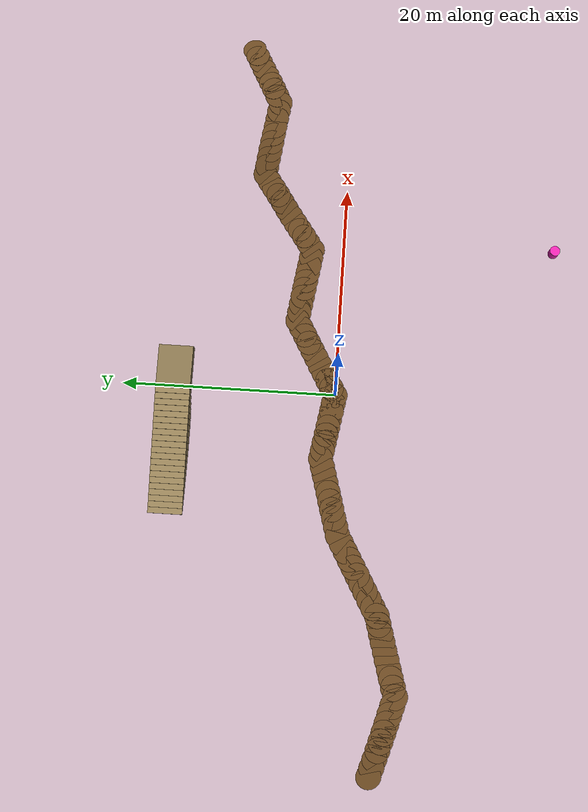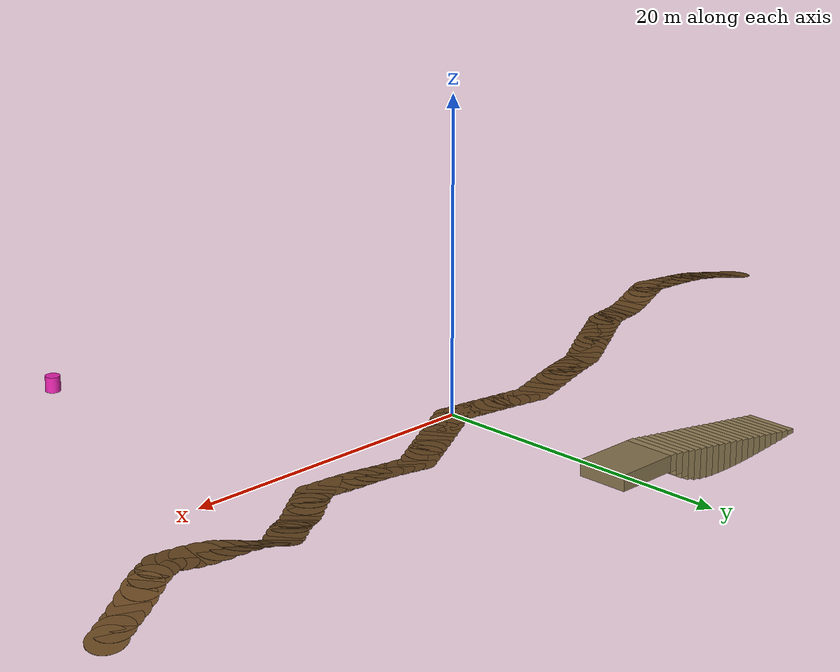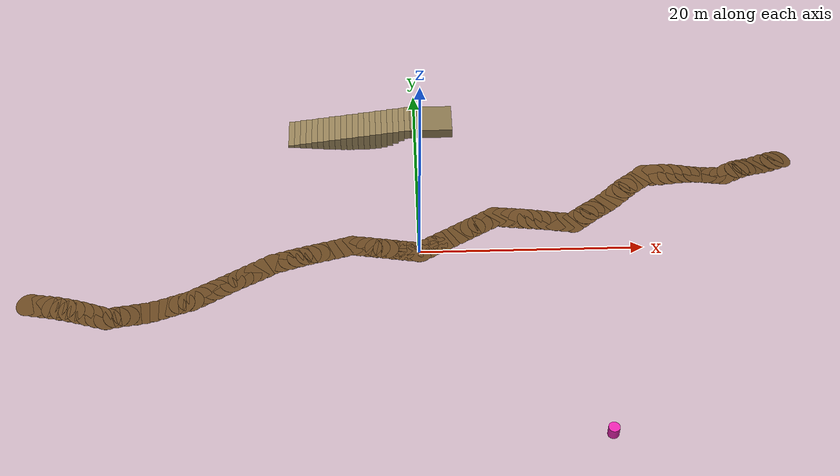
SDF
<sdf version="1.8">
 <world name="semantic_segmentation_world">
  <model name="winding_dirt_trail">
   <static>true</static>
   <link name="winding_dirt_trail_link">
    <visual name="trail_0_visual">
     <pose>-34.000000 -5.000000 0.050301 0.051949 -0.127891 0.000000</pose>
     <geometry><cylinder><radius>1.15</radius><length>0.02</length></cylinder></geometry>
     <material>
      <ambient>0.4 0.27 0.12 1.0</ambient>
      <diffuse>0.4 0.27 0.12 1.0</diffuse>
      <specular>0.04 0.04 0.04 1</specular>
     </material>
    </visual>
    <visual name="trail_1_visual">
     <pose>-33.222222 -5.222222 0.151182 0.059512 -0.159148 0.000000</pose>
     <geometry><cylinder><radius>1.15</radius><length>0.02</length></cylinder></geometry>
     <material>
      <ambient>0.4 0.27 0.12 1.0</ambient>
      <diffuse>0.4 0.27 0.12 1.0</diffuse>
      <specular>0.04 0.04 0.04 1</specular>
     </material>
    </visual>
    <visual name="trail_2_visual">
     <pose>-32.444444 -5.444444 0.267779 0.065935 -0.168386 0.000000</pose>
     <geometry><cylinder><radius>1.15</radius><length>0.02</length></cylinder></geometry>
     <material>
      <ambient>0.4 0.27 0.12 1.0</ambient>
      <diffuse>0.4 0.27 0.12 1.0</diffuse>
      <specular>0.04 0.04 0.04 1</specular>
     </material>
    </visual>
    <visual name="trail_3_visual">
     <pose>-31.666667 -5.666667 0.377255 0.072267 -0.143954 0.000000</pose>
     <geometry><cylinder><radius>1.15</radius><length>0.02</length></cylinder></geometry>
     <material>
      <ambient>0.4 0.27 0.12 1.0</ambient>
      <diffuse>0.4 0.27 0.12 1.0</diffuse>
      <specular>0.04 0.04 0.04 1</specular>
     </material>
    </visual>
    <visual name="trail_4_visual">
     <pose>-30.888889 -5.888889 0.453291 0.079092 -0.090111 0.000000</pose>
     <geometry><cylinder><radius>1.15</radius><length>0.02</length></cylinder></geometry>
     <material>
      <ambient>0.4 0.27 0.12 1.0</ambient>
      <diffuse>0.4 0.27 0.12 1.0</diffuse>
      <specular>0.04 0.04 0.04 1</specular>
     </material>
    </visual>
    <visual name="trail_5_visual">
     <pose>-30.111111 -6.111111 0.480769 0.084727 -0.028492 0.000000</pose>
     <geometry><cylinder><radius>1.15</radius><length>0.02</length></cylinder></geometry>
     <material>
      <ambient>0.4 0.27 0.12 1.0</ambient>
      <diffuse>0.4 0.27 0.12 1.0</diffuse>
      <specular>0.04 0.04 0.04 1</specular>
     </material>
    </visual>
    <visual name="trail_6_visual">
     <pose>-29.333333 -6.333333 0.465073 0.084875 0.015345 0.000000</pose>
     <geometry><cylinder><radius>1.15</radius><length>0.02</length></cylinder></geometry>
     <material>
      <ambient>0.4 0.27 0.12 1.0</ambient>
      <diffuse>0.4 0.27 0.12 1.0</diffuse>
      <specular>0.04 0.04 0.04 1</specular>
     </material>
    </visual>
    <visual name="trail_7_visual">
     <pose>-28.555556 -6.555556 0.426920 0.074791 0.032641 0.000000</pose>
     <geometry><cylinder><radius>1.15</radius><length>0.02</length></cylinder></geometry>
     <material>
      <ambient>0.4 0.27 0.12 1.0</ambient>
      <diffuse>0.4 0.27 0.12 1.0</diffuse>
      <specular>0.04 0.04 0.04 1</specular>
     </material>
    </visual>
    <visual name="trail_8_visual">
     <pose>-27.777778 -6.777778 0.384693 0.052904 0.039408 0.000000</pose>
     <geometry><cylinder><radius>1.15</radius><length>0.02</length></cylinder></geometry>
     <material>
      <ambient>0.4 0.27 0.12 1.0</ambient>
      <diffuse>0.4 0.27 0.12 1.0</diffuse>
      <specular>0.04 0.04 0.04 1</specular>
     </material>
    </visual>
    <visual name="trail_9_visual">
     <pose>-27.000000 -7.000000 0.338432 0.023169 0.061938 0.000000</pose>
     <geometry><cylinder><radius>1.15</radius><length>0.02</length></cylinder></geometry>
     <material>
      <ambient>0.4 0.27 0.12 1.0</ambient>
      <diffuse>0.4 0.27 0.12 1.0</diffuse>
      <specular>0.04 0.04 0.04 1</specular>
     </material>
    </visual>
    <visual name="trail_10_visual">
     <pose>-26.222222 -6.777778 0.269405 -0.001043 0.122309 0.000000</pose>
     <geometry><cylinder><radius>1.15</radius><length>0.02</length></cylinder></geometry>
     <material>
      <ambient>0.4 0.27 0.12 1.0</ambient>
      <diffuse>0.4 0.27 0.12 1.0</diffuse>
      <specular>0.04 0.04 0.04 1</specular>
     </material>
    </visual>
    <visual name="trail_11_visual">
     <pose>-25.444444 -6.555556 0.150694 -0.012274 0.170468 0.000000</pose>
     <geometry><cylinder><radius>1.15</radius><length>0.02</length></cylinder></geometry>
     <material>
      <ambient>0.4 0.27 0.12 1.0</ambient>
      <diffuse>0.4 0.27 0.12 1.0</diffuse>
      <specular>0.04 0.04 0.04 1</specular>
     </material>
    </visual>
    <visual name="trail_12_visual">
     <pose>-24.666667 -6.333333 0.010501 -0.010062 0.168952 0.000000</pose>
     <geometry><cylinder><radius>1.15</radius><length>0.02</length></cylinder></geometry>
     <material>
      <ambient>0.4 0.27 0.12 1.0</ambient>
      <diffuse>0.4 0.27 0.12 1.0</diffuse>
      <specular>0.04 0.04 0.04 1</specular>
     </material>
    </visual>
    <visual name="trail_13_visual">
     <pose>-23.888889 -6.111111 -0.102235 -0.000740 0.106440 0.000000</pose>
     <geometry><cylinder><radius>1.15</radius><length>0.02</length></cylinder></geometry>
     <material>
      <ambient>0.4 0.27 0.12 1.0</ambient>
      <diffuse>0.4 0.27 0.12 1.0</diffuse>
      <specular>0.04 0.04 0.04 1</specular>
     </material>
    </visual>
    <visual name="trail_14_visual">
     <pose>-23.111111 -5.888889 -0.147466 0.007459 0.010183 0.000000</pose>
     <geometry><cylinder><radius>1.15</radius><length>0.02</length></cylinder></geometry>
     <material>
      <ambient>0.4 0.27 0.12 1.0</ambient>
      <diffuse>0.4 0.27 0.12 1.0</diffuse>
      <specular>0.04 0.04 0.04 1</specular>
     </material>
    </visual>
    <visual name="trail_15_visual">
     <pose>-22.333333 -5.666667 -0.119939 0.009988 -0.068469 0.000000</pose>
     <geometry><cylinder><radius>1.15</radius><length>0.02</length></cylinder></geometry>
     <material>
      <ambient>0.4 0.27 0.12 1.0</ambient>
      <diffuse>0.4 0.27 0.12 1.0</diffuse>
      <specular>0.04 0.04 0.04 1</specular>
     </material>
    </visual>
    <visual name="trail_16_visual">
     <pose>-21.555556 -5.444444 -0.050955 0.007957 -0.092983 0.000000</pose>
     <geometry><cylinder><radius>1.15</radius><length>0.02</length></cylinder></geometry>
     <material>
      <ambient>0.4 0.27 0.12 1.0</ambient>
      <diffuse>0.4 0.27 0.12 1.0</diffuse>
      <specular>0.04 0.04 0.04 1</specular>
     </material>
    </visual>
    <visual name="trail_17_visual">
     <pose>-20.777778 -5.222222 0.015080 0.005329 -0.066254 0.000000</pose>
     <geometry><cylinder><radius>1.15</radius><length>0.02</length></cylinder></geometry>
     <material>
      <ambient>0.4 0.27 0.12 1.0</ambient>
      <diffuse>0.4 0.27 0.12 1.0</diffuse>
      <specular>0.04 0.04 0.04 1</specular>
     </material>
    </visual>
    <visual name="trail_18_visual">
     <pose>-20.000000 -5.000000 0.050368 0.004247 -0.022375 0.000000</pose>
     <geometry><cylinder><radius>1.15</radius><length>0.02</length></cylinder></geometry>
     <material>
      <ambient>0.4 0.27 0.12 1.0</ambient>
      <diffuse>0.4 0.27 0.12 1.0</diffuse>
      <specular>0.04 0.04 0.04 1</specular>
     </material>
    </visual>
    <visual name="trail_19_visual">
     <pose>-19.300000 -4.600000 0.057784 0.003837 0.002125 0.000000</pose>
     <geometry><cylinder><radius>1.15</radius><length>0.02</length></cylinder></geometry>
     <material>
      <ambient>0.4 0.27 0.12 1.0</ambient>
      <diffuse>0.4 0.27 0.12 1.0</diffuse>
      <specular>0.04 0.04 0.04 1</specular>
     </material>
    </visual>
    <visual name="trail_20_visual">
     <pose>-18.600000 -4.200000 0.055387 -0.001527 0.003000 0.000000</pose>
     <geometry><cylinder><radius>1.15</radius><length>0.02</length></cylinder></geometry>
     <material>
      <ambient>0.4 0.27 0.12 1.0</ambient>
      <diffuse>0.4 0.27 0.12 1.0</diffuse>
      <specular>0.04 0.04 0.04 1</specular>
     </material>
    </visual>
    <visual name="trail_21_visual">
     <pose>-17.900000 -3.800000 0.054753 -0.011427 -0.009036 0.000000</pose>
     <geometry><cylinder><radius>1.15</radius><length>0.02</length></cylinder></geometry>
     <material>
      <ambient>0.4 0.27 0.12 1.0</ambient>
      <diffuse>0.4 0.27 0.12 1.0</diffuse>
      <specular>0.04 0.04 0.04 1</specular>
     </material>
    </visual>
    <visual name="trail_22_visual">
     <pose>-17.200000 -3.400000 0.057856 -0.022386 -0.017548 0.000000</pose>
     <geometry><cylinder><radius>1.15</radius><length>0.02</length></cylinder></geometry>
     <material>
      <ambient>0.4 0.27 0.12 1.0</ambient>
      <diffuse>0.4 0.27 0.12 1.0</diffuse>
      <specular>0.04 0.04 0.04 1</specular>
     </material>
    </visual>
    <visual name="trail_23_visual">
     <pose>-16.500000 -3.000000 0.058981 -0.029237 -0.013594 0.000000</pose>
     <geometry><cylinder><radius>1.15</radius><length>0.02</length></cylinder></geometry>
     <material>
      <ambient>0.4 0.27 0.12 1.0</ambient>
      <diffuse>0.4 0.27 0.12 1.0</diffuse>
      <specular>0.04 0.04 0.04 1</specular>
     </material>
    </visual>
    <visual name="trail_24_visual">
     <pose>-15.800000 -2.600000 0.052485 -0.027911 -0.000686 0.000000</pose>
     <geometry><cylinder><radius>1.15</radius><length>0.02</length></cylinder></geometry>
     <material>
      <ambient>0.4 0.27 0.12 1.0</ambient>
      <diffuse>0.4 0.27 0.12 1.0</diffuse>
      <specular>0.04 0.04 0.04 1</specular>
     </material>
    </visual>
    <visual name="trail_25_visual">
     <pose>-15.100000 -2.200000 0.039299 -0.017826 0.010184 0.000000</pose>
     <geometry><cylinder><radius>1.15</radius><length>0.02</length></cylinder></geometry>
     <material>
      <ambient>0.4 0.27 0.12 1.0</ambient>
      <diffuse>0.4 0.27 0.12 1.0</diffuse>
      <specular>0.04 0.04 0.04 1</specular>
     </material>
    </visual>
    <visual name="trail_26_visual">
     <pose>-14.400000 -1.800000 0.027321 -0.002390 0.010003 0.000000</pose>
     <geometry><cylinder><radius>1.15</radius><length>0.02</length></cylinder></geometry>
     <material>
      <ambient>0.4 0.27 0.12 1.0</ambient>
      <diffuse>0.4 0.27 0.12 1.0</diffuse>
      <specular>0.04 0.04 0.04 1</specular>
     </material>
    </visual>
    <visual name="trail_27_visual">
     <pose>-13.700000 -1.400000 0.026060 0.012605 -0.001747 0.000000</pose>
     <geometry><cylinder><radius>1.15</radius><length>0.02</length></cylinder></geometry>
     <material>
      <ambient>0.4 0.27 0.12 1.0</ambient>
      <diffuse>0.4 0.27 0.12 1.0</diffuse>
      <specular>0.04 0.04 0.04 1</specular>
     </material>
    </visual>
    <visual name="trail_28_visual">
     <pose>-13.000000 -1.000000 0.039954 0.021659 -0.017383 0.000000</pose>
     <geometry><cylinder><radius>1.15</radius><length>0.02</length></cylinder></geometry>
     <material>
      <ambient>0.4 0.27 0.12 1.0</ambient>
      <diffuse>0.4 0.27 0.12 1.0</diffuse>
      <specular>0.04 0.04 0.04 1</specular>
     </material>
    </visual>
    <visual name="trail_29_visual">
     <pose>-12.222222 -0.777778 0.063559 0.019212 -0.029665 0.000000</pose>
     <geometry><cylinder><radius>1.15</radius><length>0.02</length></cylinder></geometry>
     <material>
      <ambient>0.4 0.27 0.12 1.0</ambient>
      <diffuse>0.4 0.27 0.12 1.0</diffuse>
      <specular>0.04 0.04 0.04 1</specular>
     </material>
    </visual>
    <visual name="trail_30_visual">
     <pose>-11.444444 -0.555556 0.090531 0.008651 -0.028011 0.000000</pose>
     <geometry><cylinder><radius>1.15</radius><length>0.02</length></cylinder></geometry>
     <material>
      <ambient>0.4 0.27 0.12 1.0</ambient>
      <diffuse>0.4 0.27 0.12 1.0</diffuse>
      <specular>0.04 0.04 0.04 1</specular>
     </material>
    </visual>
    <visual name="trail_31_visual">
     <pose>-10.666667 -0.333333 0.106190 -0.006401 -0.009564 0.000000</pose>
     <geometry><cylinder><radius>1.15</radius><length>0.02</length></cylinder></geometry>
     <material>
      <ambient>0.4 0.27 0.12 1.0</ambient>
      <diffuse>0.4 0.27 0.12 1.0</diffuse>
      <specular>0.04 0.04 0.04 1</specular>
     </material>
    </visual>
    <visual name="trail_32_visual">
     <pose>-9.888889 -0.111111 0.101560 -0.019864 0.013274 0.000000</pose>
     <geometry><cylinder><radius>1.15</radius><length>0.02</length></cylinder></geometry>
     <material>
      <ambient>0.4 0.27 0.12 1.0</ambient>
      <diffuse>0.4 0.27 0.12 1.0</diffuse>
      <specular>0.04 0.04 0.04 1</specular>
     </material>
    </visual>
    <visual name="trail_33_visual">
     <pose>-9.111111 0.111111 0.079439 -0.027470 0.027534 0.000000</pose>
     <geometry><cylinder><radius>1.15</radius><length>0.02</length></cylinder></geometry>
     <material>
      <ambient>0.4 0.27 0.12 1.0</ambient>
      <diffuse>0.4 0.27 0.12 1.0</diffuse>
      <specular>0.04 0.04 0.04 1</specular>
     </material>
    </visual>
    <visual name="trail_34_visual">
     <pose>-8.333333 0.333333 0.050708 -0.028105 0.027828 0.000000</pose>
     <geometry><cylinder><radius>1.15</radius><length>0.02</length></cylinder></geometry>
     <material>
      <ambient>0.4 0.27 0.12 1.0</ambient>
      <diffuse>0.4 0.27 0.12 1.0</diffuse>
      <specular>0.04 0.04 0.04 1</specular>
     </material>
    </visual>
    <visual name="trail_35_visual">
     <pose>-7.555556 0.555556 0.026869 -0.023271 0.017339 0.000000</pose>
     <geometry><cylinder><radius>1.15</radius><length>0.02</length></cylinder></geometry>
     <material>
      <ambient>0.4 0.27 0.12 1.0</ambient>
      <diffuse>0.4 0.27 0.12 1.0</diffuse>
      <specular>0.04 0.04 0.04 1</specular>
     </material>
    </visual>
    <visual name="trail_36_visual">
     <pose>-6.777778 0.777778 0.014475 -0.015841 0.003347 0.000000</pose>
     <geometry><cylinder><radius>1.15</radius><length>0.02</length></cylinder></geometry>
     <material>
      <ambient>0.4 0.27 0.12 1.0</ambient>
      <diffuse>0.4 0.27 0.12 1.0</diffuse>
      <specular>0.04 0.04 0.04 1</specular>
     </material>
    </visual>
    <visual name="trail_37_visual">
     <pose>-6.000000 1.000000 0.013785 -0.008731 -0.007606 0.000000</pose>
     <geometry><cylinder><radius>1.15</radius><length>0.02</length></cylinder></geometry>
     <material>
      <ambient>0.4 0.27 0.12 1.0</ambient>
      <diffuse>0.4 0.27 0.12 1.0</diffuse>
      <specular>0.04 0.04 0.04 1</specular>
     </material>
    </visual>
    <visual name="trail_38_visual">
     <pose>-5.250000 0.875000 0.021679 -0.004285 -0.010530 0.000000</pose>
     <geometry><cylinder><radius>1.15</radius><length>0.02</length></cylinder></geometry>
     <material>
      <ambient>0.4 0.27 0.12 1.0</ambient>
      <diffuse>0.4 0.27 0.12 1.0</diffuse>
      <specular>0.04 0.04 0.04 1</specular>
     </material>
    </visual>
    <visual name="trail_39_visual">
     <pose>-4.500000 0.750000 0.029700 -0.001527 -0.009337 0.000000</pose>
     <geometry><cylinder><radius>1.15</radius><length>0.02</length></cylinder></geometry>
     <material>
      <ambient>0.4 0.27 0.12 1.0</ambient>
      <diffuse>0.4 0.27 0.12 1.0</diffuse>
      <specular>0.04 0.04 0.04 1</specular>
     </material>
    </visual>
    <visual name="trail_40_visual">
     <pose>-3.750000 0.625000 0.035466 -0.000394 -0.005452 0.000000</pose>
     <geometry><cylinder><radius>1.15</radius><length>0.02</length></cylinder></geometry>
     <material>
      <ambient>0.4 0.27 0.12 1.0</ambient>
      <diffuse>0.4 0.27 0.12 1.0</diffuse>
      <specular>0.04 0.04 0.04 1</specular>
     </material>
    </visual>
    <visual name="trail_41_visual">
     <pose>-3.000000 0.500000 0.037879 -0.000111 -0.001050 0.000000</pose>
     <geometry><cylinder><radius>1.15</radius><length>0.02</length></cylinder></geometry>
     <material>
      <ambient>0.4 0.27 0.12 1.0</ambient>
      <diffuse>0.4 0.27 0.12 1.0</diffuse>
      <specular>0.04 0.04 0.04 1</specular>
     </material>
    </visual>
    <visual name="trail_42_visual">
     <pose>-2.250000 0.375000 0.038000 0.000000 -0.000000 0.000000</pose>
     <geometry><cylinder><radius>1.15</radius><length>0.02</length></cylinder></geometry>
     <material>
      <ambient>0.4 0.27 0.12 1.0</ambient>
      <diffuse>0.4 0.27 0.12 1.0</diffuse>
      <specular>0.04 0.04 0.04 1</specular>
     </material>
    </visual>
    <visual name="trail_43_visual">
     <pose>-1.500000 0.250000 0.038000 0.000000 -0.000000 0.000000</pose>
     <geometry><cylinder><radius>1.15</radius><length>0.02</length></cylinder></geometry>
     <material>
      <ambient>0.4 0.27 0.12 1.0</ambient>
      <diffuse>0.4 0.27 0.12 1.0</diffuse>
      <specular>0.04 0.04 0.04 1</specular>
     </material>
    </visual>
    <visual name="trail_44_visual">
     <pose>-0.750000 0.125000 0.038000 0.000000 -0.000000 0.000000</pose>
     <geometry><cylinder><radius>1.15</radius><length>0.02</length></cylinder></geometry>
     <material>
      <ambient>0.4 0.27 0.12 1.0</ambient>
      <diffuse>0.4 0.27 0.12 1.0</diffuse>
      <specular>0.04 0.04 0.04 1</specular>
     </material>
    </visual>
    <visual name="trail_45_visual">
     <pose>0.000000 0.000000 0.038000 0.000000 -0.000000 0.000000</pose>
     <geometry><cylinder><radius>1.15</radius><length>0.02</length></cylinder></geometry>
     <material>
      <ambient>0.4 0.27 0.12 1.0</ambient>
      <diffuse>0.4 0.27 0.12 1.0</diffuse>
      <specular>0.04 0.04 0.04 1</specular>
     </material>
    </visual>
    <visual name="trail_46_visual">
     <pose>0.700000 0.400000 0.038000 0.000000 -0.000000 0.000000</pose>
     <geometry><cylinder><radius>1.15</radius><length>0.02</length></cylinder></geometry>
     <material>
      <ambient>0.4 0.27 0.12 1.0</ambient>
      <diffuse>0.4 0.27 0.12 1.0</diffuse>
      <specular>0.04 0.04 0.04 1</specular>
     </material>
    </visual>
    <visual name="trail_47_visual">
     <pose>1.400000 0.800000 0.038000 0.000000 -0.000000 0.000000</pose>
     <geometry><cylinder><radius>1.15</radius><length>0.02</length></cylinder></geometry>
     <material>
      <ambient>0.4 0.27 0.12 1.0</ambient>
      <diffuse>0.4 0.27 0.12 1.0</diffuse>
      <specular>0.04 0.04 0.04 1</specular>
     </material>
    </visual>
    <visual name="trail_48_visual">
     <pose>2.100000 1.200000 0.038000 0.000000 -0.000000 0.000000</pose>
     <geometry><cylinder><radius>1.15</radius><length>0.02</length></cylinder></geometry>
     <material>
      <ambient>0.4 0.27 0.12 1.0</ambient>
      <diffuse>0.4 0.27 0.12 1.0</diffuse>
      <specular>0.04 0.04 0.04 1</specular>
     </material>
    </visual>
    <visual name="trail_49_visual">
     <pose>2.800000 1.600000 0.039315 0.003081 -0.005220 0.000000</pose>
     <geometry><cylinder><radius>1.15</radius><length>0.02</length></cylinder></geometry>
     <material>
      <ambient>0.4 0.27 0.12 1.0</ambient>
      <diffuse>0.4 0.27 0.12 1.0</diffuse>
      <specular>0.04 0.04 0.04 1</specular>
     </material>
    </visual>
    <visual name="trail_50_visual">
     <pose>3.500000 2.000000 0.047896 0.007661 -0.012226 0.000000</pose>
     <geometry><cylinder><radius>1.15</radius><length>0.02</length></cylinder></geometry>
     <material>
      <ambient>0.4 0.27 0.12 1.0</ambient>
      <diffuse>0.4 0.27 0.12 1.0</diffuse>
      <specular>0.04 0.04 0.04 1</specular>
     </material>
    </visual>
    <visual name="trail_51_visual">
     <pose>4.200000 2.400000 0.061177 0.009997 -0.014523 0.000000</pose>
     <geometry><cylinder><radius>1.15</radius><length>0.02</length></cylinder></geometry>
     <material>
      <ambient>0.4 0.27 0.12 1.0</ambient>
      <diffuse>0.4 0.27 0.12 1.0</diffuse>
      <specular>0.04 0.04 0.04 1</specular>
     </material>
    </visual>
    <visual name="trail_52_visual">
     <pose>4.900000 2.800000 0.074481 0.009116 -0.011171 0.000000</pose>
     <geometry><cylinder><radius>1.15</radius><length>0.02</length></cylinder></geometry>
     <material>
      <ambient>0.4 0.27 0.12 1.0</ambient>
      <diffuse>0.4 0.27 0.12 1.0</diffuse>
      <specular>0.04 0.04 0.04 1</specular>
     </material>
    </visual>
    <visual name="trail_53_visual">
     <pose>5.600000 3.200000 0.082644 0.005771 -0.003417 0.000000</pose>
     <geometry><cylinder><radius>1.15</radius><length>0.02</length></cylinder></geometry>
     <material>
      <ambient>0.4 0.27 0.12 1.0</ambient>
      <diffuse>0.4 0.27 0.12 1.0</diffuse>
      <specular>0.04 0.04 0.04 1</specular>
     </material>
    </visual>
    <visual name="trail_54_visual">
     <pose>6.300000 3.600000 0.085821 0.008185 -0.000936 0.000000</pose>
     <geometry><cylinder><radius>1.15</radius><length>0.02</length></cylinder></geometry>
     <material>
      <ambient>0.4 0.27 0.12 1.0</ambient>
      <diffuse>0.4 0.27 0.12 1.0</diffuse>
      <specular>0.04 0.04 0.04 1</specular>
     </material>
    </visual>
    <visual name="trail_55_visual">
     <pose>7.000000 4.000000 0.096664 0.025869 -0.015082 0.000000</pose>
     <geometry><cylinder><radius>1.15</radius><length>0.02</length></cylinder></geometry>
     <material>
      <ambient>0.4 0.27 0.12 1.0</ambient>
      <diffuse>0.4 0.27 0.12 1.0</diffuse>
      <specular>0.04 0.04 0.04 1</specular>
     </material>
    </visual>
    <visual name="trail_56_visual">
     <pose>7.777778 3.888889 0.109439 0.042663 -0.027699 0.000000</pose>
     <geometry><cylinder><radius>1.15</radius><length>0.02</length></cylinder></geometry>
     <material>
      <ambient>0.4 0.27 0.12 1.0</ambient>
      <diffuse>0.4 0.27 0.12 1.0</diffuse>
      <specular>0.04 0.04 0.04 1</specular>
     </material>
    </visual>
    <visual name="trail_57_visual">
     <pose>8.555556 3.777778 0.129585 0.055896 -0.037061 0.000000</pose>
     <geometry><cylinder><radius>1.15</radius><length>0.02</length></cylinder></geometry>
     <material>
      <ambient>0.4 0.27 0.12 1.0</ambient>
      <diffuse>0.4 0.27 0.12 1.0</diffuse>
      <specular>0.04 0.04 0.04 1</specular>
     </material>
    </visual>
    <visual name="trail_58_visual">
     <pose>9.333333 3.666667 0.152200 0.057690 -0.035253 0.000000</pose>
     <geometry><cylinder><radius>1.15</radius><length>0.02</length></cylinder></geometry>
     <material>
      <ambient>0.4 0.27 0.12 1.0</ambient>
      <diffuse>0.4 0.27 0.12 1.0</diffuse>
      <specular>0.04 0.04 0.04 1</specular>
     </material>
    </visual>
    <visual name="trail_59_visual">
     <pose>10.111111 3.555556 0.168534 0.045211 -0.019666 0.000000</pose>
     <geometry><cylinder><radius>1.15</radius><length>0.02</length></cylinder></geometry>
     <material>
      <ambient>0.4 0.27 0.12 1.0</ambient>
      <diffuse>0.4 0.27 0.12 1.0</diffuse>
      <specular>0.04 0.04 0.04 1</specular>
     </material>
    </visual>
    <visual name="trail_60_visual">
     <pose>10.888889 3.444444 0.171141 0.023995 0.003237 0.000000</pose>
     <geometry><cylinder><radius>1.15</radius><length>0.02</length></cylinder></geometry>
     <material>
      <ambient>0.4 0.27 0.12 1.0</ambient>
      <diffuse>0.4 0.27 0.12 1.0</diffuse>
      <specular>0.04 0.04 0.04 1</specular>
     </material>
    </visual>
    <visual name="trail_61_visual">
     <pose>11.666667 3.333333 0.159964 0.006564 0.017878 0.000000</pose>
     <geometry><cylinder><radius>1.15</radius><length>0.02</length></cylinder></geometry>
     <material>
      <ambient>0.4 0.27 0.12 1.0</ambient>
      <diffuse>0.4 0.27 0.12 1.0</diffuse>
      <specular>0.04 0.04 0.04 1</specular>
     </material>
    </visual>
    <visual name="trail_62_visual">
     <pose>12.444444 3.222222 0.145769 0.002724 0.014941 0.000000</pose>
     <geometry><cylinder><radius>1.15</radius><length>0.02</length></cylinder></geometry>
     <material>
      <ambient>0.4 0.27 0.12 1.0</ambient>
      <diffuse>0.4 0.27 0.12 1.0</diffuse>
      <specular>0.04 0.04 0.04 1</specular>
     </material>
    </visual>
    <visual name="trail_63_visual">
     <pose>13.222222 3.111111 0.139380 0.013500 -0.002595 0.000000</pose>
     <geometry><cylinder><radius>1.15</radius><length>0.02</length></cylinder></geometry>
     <material>
      <ambient>0.4 0.27 0.12 1.0</ambient>
      <diffuse>0.4 0.27 0.12 1.0</diffuse>
      <specular>0.04 0.04 0.04 1</specular>
     </material>
    </visual>
    <visual name="trail_64_visual">
     <pose>14.000000 3.000000 0.148345 0.033001 -0.027257 0.000000</pose>
     <geometry><cylinder><radius>1.15</radius><length>0.02</length></cylinder></geometry>
     <material>
      <ambient>0.4 0.27 0.12 1.0</ambient>
      <diffuse>0.4 0.27 0.12 1.0</diffuse>
      <specular>0.04 0.04 0.04 1</specular>
     </material>
    </visual>
    <visual name="trail_65_visual">
     <pose>14.636364 3.454545 0.196060 0.054283 -0.051983 0.000000</pose>
     <geometry><cylinder><radius>1.15</radius><length>0.02</length></cylinder></geometry>
     <material>
      <ambient>0.4 0.27 0.12 1.0</ambient>
      <diffuse>0.4 0.27 0.12 1.0</diffuse>
      <specular>0.04 0.04 0.04 1</specular>
     </material>
    </visual>
    <visual name="trail_66_visual">
     <pose>15.272727 3.909091 0.247538 0.033523 -0.032747 0.000000</pose>
     <geometry><cylinder><radius>1.15</radius><length>0.02</length></cylinder></geometry>
     <material>
      <ambient>0.4 0.27 0.12 1.0</ambient>
      <diffuse>0.4 0.27 0.12 1.0</diffuse>
      <specular>0.04 0.04 0.04 1</specular>
     </material>
    </visual>
    <visual name="trail_67_visual">
     <pose>15.909091 4.363636 0.257259 -0.018283 0.012572 0.000000</pose>
     <geometry><cylinder><radius>1.15</radius><length>0.02</length></cylinder></geometry>
     <material>
      <ambient>0.4 0.27 0.12 1.0</ambient>
      <diffuse>0.4 0.27 0.12 1.0</diffuse>
      <specular>0.04 0.04 0.04 1</specular>
     </material>
    </visual>
    <visual name="trail_68_visual">
     <pose>16.545455 4.818182 0.229940 -0.032651 0.015077 0.000000</pose>
     <geometry><cylinder><radius>1.15</radius><length>0.02</length></cylinder></geometry>
     <material>
      <ambient>0.4 0.27 0.12 1.0</ambient>
      <diffuse>0.4 0.27 0.12 1.0</diffuse>
      <specular>0.04 0.04 0.04 1</specular>
     </material>
    </visual>
    <visual name="trail_69_visual">
     <pose>17.181818 5.272727 0.239385 0.037044 -0.062756 0.000000</pose>
     <geometry><cylinder><radius>1.15</radius><length>0.02</length></cylinder></geometry>
     <material>
      <ambient>0.4 0.27 0.12 1.0</ambient>
      <diffuse>0.4 0.27 0.12 1.0</diffuse>
      <specular>0.04 0.04 0.04 1</specular>
     </material>
    </visual>
    <visual name="trail_70_visual">
     <pose>17.818182 5.727273 0.354542 0.141368 -0.162178 0.000000</pose>
     <geometry><cylinder><radius>1.15</radius><length>0.02</length></cylinder></geometry>
     <material>
      <ambient>0.4 0.27 0.12 1.0</ambient>
      <diffuse>0.4 0.27 0.12 1.0</diffuse>
      <specular>0.04 0.04 0.04 1</specular>
     </material>
    </visual>
    <visual name="trail_71_visual">
     <pose>18.454545 6.181818 0.548709 0.175844 -0.183147 0.000000</pose>
     <geometry><cylinder><radius>1.15</radius><length>0.02</length></cylinder></geometry>
     <material>
      <ambient>0.4 0.27 0.12 1.0</ambient>
      <diffuse>0.4 0.27 0.12 1.0</diffuse>
      <specular>0.04 0.04 0.04 1</specular>
     </material>
    </visual>
    <visual name="trail_72_visual">
     <pose>19.090909 6.636364 0.712521 0.106114 -0.105050 0.000000</pose>
     <geometry><cylinder><radius>1.15</radius><length>0.02</length></cylinder></geometry>
     <material>
      <ambient>0.4 0.27 0.12 1.0</ambient>
      <diffuse>0.4 0.27 0.12 1.0</diffuse>
      <specular>0.04 0.04 0.04 1</specular>
     </material>
    </visual>
    <visual name="trail_73_visual">
     <pose>19.727273 7.090909 0.777160 0.020920 -0.025201 0.000000</pose>
     <geometry><cylinder><radius>1.15</radius><length>0.02</length></cylinder></geometry>
     <material>
      <ambient>0.4 0.27 0.12 1.0</ambient>
      <diffuse>0.4 0.27 0.12 1.0</diffuse>
      <specular>0.04 0.04 0.04 1</specular>
     </material>
    </visual>
    <visual name="trail_74_visual">
     <pose>20.363636 7.545455 0.804548 0.040464 -0.054853 0.000000</pose>
     <geometry><cylinder><radius>1.15</radius><length>0.02</length></cylinder></geometry>
     <material>
      <ambient>0.4 0.27 0.12 1.0</ambient>
      <diffuse>0.4 0.27 0.12 1.0</diffuse>
      <specular>0.04 0.04 0.04 1</specular>
     </material>
    </visual>
    <visual name="trail_75_visual">
     <pose>21.000000 8.000000 0.918118 0.155977 -0.167173 0.000000</pose>
     <geometry><cylinder><radius>1.15</radius><length>0.02</length></cylinder></geometry>
     <material>
      <ambient>0.4 0.27 0.12 1.0</ambient>
      <diffuse>0.4 0.27 0.12 1.0</diffuse>
      <specular>0.04 0.04 0.04 1</specular>
     </material>
    </visual>
    <visual name="trail_76_visual">
     <pose>21.777778 7.888889 1.052288 0.191748 -0.216550 0.000000</pose>
     <geometry><cylinder><radius>1.15</radius><length>0.02</length></cylinder></geometry>
     <material>
      <ambient>0.4 0.27 0.12 1.0</ambient>
      <diffuse>0.4 0.27 0.12 1.0</diffuse>
      <specular>0.04 0.04 0.04 1</specular>
     </material>
    </visual>
    <visual name="trail_77_visual">
     <pose>22.555556 7.777778 1.205871 0.174372 -0.216480 0.000000</pose>
     <geometry><cylinder><radius>1.15</radius><length>0.02</length></cylinder></geometry>
     <material>
      <ambient>0.4 0.27 0.12 1.0</ambient>
      <diffuse>0.4 0.27 0.12 1.0</diffuse>
      <specular>0.04 0.04 0.04 1</specular>
     </material>
    </visual>
    <visual name="trail_78_visual">
     <pose>23.333333 7.666667 1.344939 0.103044 -0.170697 0.000000</pose>
     <geometry><cylinder><radius>1.15</radius><length>0.02</length></cylinder></geometry>
     <material>
      <ambient>0.4 0.27 0.12 1.0</ambient>
      <diffuse>0.4 0.27 0.12 1.0</diffuse>
      <specular>0.04 0.04 0.04 1</specular>
     </material>
    </visual>
    <visual name="trail_79_visual">
     <pose>24.111111 7.555556 1.446779 0.001936 -0.103869 0.000000</pose>
     <geometry><cylinder><radius>1.15</radius><length>0.02</length></cylinder></geometry>
     <material>
      <ambient>0.4 0.27 0.12 1.0</ambient>
      <diffuse>0.4 0.27 0.12 1.0</diffuse>
      <specular>0.04 0.04 0.04 1</specular>
     </material>
    </visual>
    <visual name="trail_80_visual">
     <pose>24.888889 7.444444 1.509700 -0.089906 -0.048860 0.000000</pose>
     <geometry><cylinder><radius>1.15</radius><length>0.02</length></cylinder></geometry>
     <material>
      <ambient>0.4 0.27 0.12 1.0</ambient>
      <diffuse>0.4 0.27 0.12 1.0</diffuse>
      <specular>0.04 0.04 0.04 1</specular>
     </material>
    </visual>
    <visual name="trail_81_visual">
     <pose>25.666667 7.333333 1.550182 -0.140778 -0.027203 0.000000</pose>
     <geometry><cylinder><radius>1.15</radius><length>0.02</length></cylinder></geometry>
     <material>
      <ambient>0.4 0.27 0.12 1.0</ambient>
      <diffuse>0.4 0.27 0.12 1.0</diffuse>
      <specular>0.04 0.04 0.04 1</specular>
     </material>
    </visual>
    <visual name="trail_82_visual">
     <pose>26.444444 7.222222 1.589824 -0.141637 -0.036860 0.000000</pose>
     <geometry><cylinder><radius>1.15</radius><length>0.02</length></cylinder></geometry>
     <material>
      <ambient>0.4 0.27 0.12 1.0</ambient>
      <diffuse>0.4 0.27 0.12 1.0</diffuse>
      <specular>0.04 0.04 0.04 1</specular>
     </material>
    </visual>
    <visual name="trail_83_visual">
     <pose>27.222222 7.111111 1.640140 -0.105407 -0.055347 0.000000</pose>
     <geometry><cylinder><radius>1.15</radius><length>0.02</length></cylinder></geometry>
     <material>
      <ambient>0.4 0.27 0.12 1.0</ambient>
      <diffuse>0.4 0.27 0.12 1.0</diffuse>
      <specular>0.04 0.04 0.04 1</specular>
     </material>
    </visual>
    <visual name="trail_84_visual">
     <pose>28.000000 7.000000 1.693928 -0.058105 -0.054011 0.000000</pose>
     <geometry><cylinder><radius>1.15</radius><length>0.02</length></cylinder></geometry>
     <material>
      <ambient>0.4 0.27 0.12 1.0</ambient>
      <diffuse>0.4 0.27 0.12 1.0</diffuse>
      <specular>0.04 0.04 0.04 1</specular>
     </material>
    </visual>
    <visual name="trail_85_visual">
     <pose>28.750000 7.375000 1.718352 -0.013151 -0.023099 0.000000</pose>
     <geometry><cylinder><radius>1.15</radius><length>0.02</length></cylinder></geometry>
     <material>
      <ambient>0.4 0.27 0.12 1.0</ambient>
      <diffuse>0.4 0.27 0.12 1.0</diffuse>
      <specular>0.04 0.04 0.04 1</specular>
     </material>
    </visual>
    <visual name="trail_86_visual">
     <pose>29.500000 7.750000 1.682859 -0.060733 0.098031 0.000000</pose>
     <geometry><cylinder><radius>1.15</radius><length>0.02</length></cylinder></geometry>
     <material>
      <ambient>0.4 0.27 0.12 1.0</ambient>
      <diffuse>0.4 0.27 0.12 1.0</diffuse>
      <specular>0.04 0.04 0.04 1</specular>
     </material>
    </visual>
    <visual name="trail_87_visual">
     <pose>30.250000 8.125000 1.520115 -0.139875 0.219385 0.000000</pose>
     <geometry><cylinder><radius>1.15</radius><length>0.02</length></cylinder></geometry>
     <material>
      <ambient>0.4 0.27 0.12 1.0</ambient>
      <diffuse>0.4 0.27 0.12 1.0</diffuse>
      <specular>0.04 0.04 0.04 1</specular>
     </material>
    </visual>
    <visual name="trail_88_visual">
     <pose>31.000000 8.500000 1.276171 -0.152219 0.248093 0.000000</pose>
     <geometry><cylinder><radius>1.15</radius><length>0.02</length></cylinder></geometry>
     <material>
      <ambient>0.4 0.27 0.12 1.0</ambient>
      <diffuse>0.4 0.27 0.12 1.0</diffuse>
      <specular>0.04 0.04 0.04 1</specular>
     </material>
    </visual>
    <visual name="trail_89_visual">
     <pose>31.750000 8.875000 1.056759 -0.088397 0.197643 0.000000</pose>
     <geometry><cylinder><radius>1.15</radius><length>0.02</length></cylinder></geometry>
     <material>
      <ambient>0.4 0.27 0.12 1.0</ambient>
      <diffuse>0.4 0.27 0.12 1.0</diffuse>
      <specular>0.04 0.04 0.04 1</specular>
     </material>
    </visual>
    <visual name="trail_90_visual">
     <pose>32.500000 9.250000 0.904657 -0.032837 0.157811 0.000000</pose>
     <geometry><cylinder><radius>1.15</radius><length>0.02</length></cylinder></geometry>
     <material>
      <ambient>0.4 0.27 0.12 1.0</ambient>
      <diffuse>0.4 0.27 0.12 1.0</diffuse>
      <specular>0.04 0.04 0.04 1</specular>
     </material>
    </visual>
    <visual name="trail_91_visual">
     <pose>33.250000 9.625000 0.766013 -0.053305 0.181697 0.000000</pose>
     <geometry><cylinder><radius>1.15</radius><length>0.02</length></cylinder></geometry>
     <material>
      <ambient>0.4 0.27 0.12 1.0</ambient>
      <diffuse>0.4 0.27 0.12 1.0</diffuse>
      <specular>0.04 0.04 0.04 1</specular>
     </material>
    </visual>
    <visual name="trail_92_visual">
     <pose>34.000000 10.000000 0.578972 -0.115846 0.221701 0.000000</pose>
     <geometry><cylinder><radius>1.15</radius><length>0.02</length></cylinder></geometry>
     <material>
      <ambient>0.4 0.27 0.12 1.0</ambient>
      <diffuse>0.4 0.27 0.12 1.0</diffuse>
      <specular>0.04 0.04 0.04 1</specular>
     </material>
    </visual>
   </link>
   <plugin filename="ignition-gazebo-label-system" name="ignition::gazebo::systems::Label">
    <label>1</label>
   </plugin>
  </model>
  <model name="terrain_stair_bridge">
   <static>true</static>
   <link name="terrain_stair_bridge_link">
    <collision name="step_0_collision">
     <pose>-11.725000 15.000000 0.277694 0.000000 0.000000 0.000000</pose>
     <geometry><box><size>0.55 3.2 0.26084175316113134</size></box></geometry>
     <surface><friction><ode><mu>1.1</mu><mu2>1.1</mu2></ode></friction></surface>
    </collision>
    <visual name="step_0_visual">
     <pose>-11.725000 15.000000 0.277694 0.000000 0.000000 0.000000</pose>
     <geometry><box><size>0.55 3.2 0.26084175316113134</size></box></geometry>
     <material>
      <ambient>0.58 0.5 0.34 1.0</ambient>
      <diffuse>0.58 0.5 0.34 1.0</diffuse>
      <specular>0.04 0.04 0.04 1</specular>
     </material>
    </visual>
    <collision name="step_1_collision">
     <pose>-11.175000 15.000000 0.288911 0.000000 0.000000 0.000000</pose>
     <geometry><box><size>0.55 3.2 0.4013508662620855</size></box></geometry>
     <surface><friction><ode><mu>1.1</mu><mu2>1.1</mu2></ode></friction></surface>
    </collision>
    <visual name="step_1_visual">
     <pose>-11.175000 15.000000 0.288911 0.000000 0.000000 0.000000</pose>
     <geometry><box><size>0.55 3.2 0.4013508662620855</size></box></geometry>
     <material>
      <ambient>0.58 0.5 0.34 1.0</ambient>
      <diffuse>0.58 0.5 0.34 1.0</diffuse>
      <specular>0.04 0.04 0.04 1</specular>
     </material>
    </visual>
    <collision name="step_2_collision">
     <pose>-10.625000 15.000000 0.300235 0.000000 0.000000 0.000000</pose>
     <geometry><box><size>0.55 3.2 0.5416463156040634</size></box></geometry>
     <surface><friction><ode><mu>1.1</mu><mu2>1.1</mu2></ode></friction></surface>
    </collision>
    <visual name="step_2_visual">
     <pose>-10.625000 15.000000 0.300235 0.000000 0.000000 0.000000</pose>
     <geometry><box><size>0.55 3.2 0.5416463156040634</size></box></geometry>
     <material>
      <ambient>0.58 0.5 0.34 1.0</ambient>
      <diffuse>0.58 0.5 0.34 1.0</diffuse>
      <specular>0.04 0.04 0.04 1</specular>
     </material>
    </visual>
    <collision name="step_3_collision">
     <pose>-10.075000 15.000000 0.312135 0.000000 0.000000 0.000000</pose>
     <geometry><box><size>0.55 3.2 0.6807890012220761</size></box></geometry>
     <surface><friction><ode><mu>1.1</mu><mu2>1.1</mu2></ode></friction></surface>
    </collision>
    <visual name="step_3_visual">
     <pose>-10.075000 15.000000 0.312135 0.000000 0.000000 0.000000</pose>
     <geometry><box><size>0.55 3.2 0.6807890012220761</size></box></geometry>
     <material>
      <ambient>0.58 0.5 0.34 1.0</ambient>
      <diffuse>0.58 0.5 0.34 1.0</diffuse>
      <specular>0.04 0.04 0.04 1</specular>
     </material>
    </visual>
    <collision name="step_4_collision">
     <pose>-9.525000 15.000000 0.325169 0.000000 0.000000 0.000000</pose>
     <geometry><box><size>0.55 3.2 0.8176643456168148</size></box></geometry>
     <surface><friction><ode><mu>1.1</mu><mu2>1.1</mu2></ode></friction></surface>
    </collision>
    <visual name="step_4_visual">
     <pose>-9.525000 15.000000 0.325169 0.000000 0.000000 0.000000</pose>
     <geometry><box><size>0.55 3.2 0.8176643456168148</size></box></geometry>
     <material>
      <ambient>0.58 0.5 0.34 1.0</ambient>
      <diffuse>0.58 0.5 0.34 1.0</diffuse>
      <specular>0.04 0.04 0.04 1</specular>
     </material>
    </visual>
    <collision name="step_5_collision">
     <pose>-8.975000 15.000000 0.339935 0.000000 0.000000 0.000000</pose>
     <geometry><box><size>0.55 3.2 0.9510763183294736</size></box></geometry>
     <surface><friction><ode><mu>1.1</mu><mu2>1.1</mu2></ode></friction></surface>
    </collision>
    <visual name="step_5_visual">
     <pose>-8.975000 15.000000 0.339935 0.000000 0.000000 0.000000</pose>
     <geometry><box><size>0.55 3.2 0.9510763183294736</size></box></geometry>
     <material>
      <ambient>0.58 0.5 0.34 1.0</ambient>
      <diffuse>0.58 0.5 0.34 1.0</diffuse>
      <specular>0.04 0.04 0.04 1</specular>
     </material>
    </visual>
    <collision name="step_6_collision">
     <pose>-8.425000 15.000000 0.357019 0.000000 0.000000 0.000000</pose>
     <geometry><box><size>0.55 3.2 1.0798510078090393</size></box></geometry>
     <surface><friction><ode><mu>1.1</mu><mu2>1.1</mu2></ode></friction></surface>
    </collision>
    <visual name="step_6_visual">
     <pose>-8.425000 15.000000 0.357019 0.000000 0.000000 0.000000</pose>
     <geometry><box><size>0.55 3.2 1.0798510078090393</size></box></geometry>
     <material>
      <ambient>0.58 0.5 0.34 1.0</ambient>
      <diffuse>0.58 0.5 0.34 1.0</diffuse>
      <specular>0.04 0.04 0.04 1</specular>
     </material>
    </visual>
    <collision name="step_7_collision">
     <pose>-7.875000 15.000000 0.376956 0.000000 0.000000 0.000000</pose>
     <geometry><box><size>0.55 3.2 1.2029211295588216</size></box></geometry>
     <surface><friction><ode><mu>1.1</mu><mu2>1.1</mu2></ode></friction></surface>
    </collision>
    <visual name="step_7_visual">
     <pose>-7.875000 15.000000 0.376956 0.000000 0.000000 0.000000</pose>
     <geometry><box><size>0.55 3.2 1.2029211295588216</size></box></geometry>
     <material>
      <ambient>0.58 0.5 0.34 1.0</ambient>
      <diffuse>0.58 0.5 0.34 1.0</diffuse>
      <specular>0.04 0.04 0.04 1</specular>
     </material>
    </visual>
    <collision name="step_8_collision">
     <pose>-7.325000 15.000000 0.400208 0.000000 0.000000 0.000000</pose>
     <geometry><box><size>0.55 3.2 1.3193602816709145</size></box></geometry>
     <surface><friction><ode><mu>1.1</mu><mu2>1.1</mu2></ode></friction></surface>
    </collision>
    <visual name="step_8_visual">
     <pose>-7.325000 15.000000 0.400208 0.000000 0.000000 0.000000</pose>
     <geometry><box><size>0.55 3.2 1.3193602816709145</size></box></geometry>
     <material>
      <ambient>0.58 0.5 0.34 1.0</ambient>
      <diffuse>0.58 0.5 0.34 1.0</diffuse>
      <specular>0.04 0.04 0.04 1</specular>
     </material>
    </visual>
    <collision name="step_9_collision">
     <pose>-6.775000 15.000000 0.427189 0.000000 0.000000 0.000000</pose>
     <geometry><box><size>0.55 3.2 1.4283411775721913</size></box></geometry>
     <surface><friction><ode><mu>1.1</mu><mu2>1.1</mu2></ode></friction></surface>
    </collision>
    <visual name="step_9_visual">
     <pose>-6.775000 15.000000 0.427189 0.000000 0.000000 0.000000</pose>
     <geometry><box><size>0.55 3.2 1.4283411775721913</size></box></geometry>
     <material>
      <ambient>0.58 0.5 0.34 1.0</ambient>
      <diffuse>0.58 0.5 0.34 1.0</diffuse>
      <specular>0.04 0.04 0.04 1</specular>
     </material>
    </visual>
    <collision name="step_10_collision">
     <pose>-6.225000 15.000000 0.458331 0.000000 0.000000 0.000000</pose>
     <geometry><box><size>0.55 3.2 1.5290016872413796</size></box></geometry>
     <surface><friction><ode><mu>1.1</mu><mu2>1.1</mu2></ode></friction></surface>
    </collision>
    <visual name="step_10_visual">
     <pose>-6.225000 15.000000 0.458331 0.000000 0.000000 0.000000</pose>
     <geometry><box><size>0.55 3.2 1.5290016872413796</size></box></geometry>
     <material>
      <ambient>0.58 0.5 0.34 1.0</ambient>
      <diffuse>0.58 0.5 0.34 1.0</diffuse>
      <specular>0.04 0.04 0.04 1</specular>
     </material>
    </visual>
    <collision name="step_11_collision">
     <pose>-5.675000 15.000000 0.494201 0.000000 0.000000 0.000000</pose>
     <geometry><box><size>0.55 3.2 1.6202048111377048</size></box></geometry>
     <surface><friction><ode><mu>1.1</mu><mu2>1.1</mu2></ode></friction></surface>
    </collision>
    <visual name="step_11_visual">
     <pose>-5.675000 15.000000 0.494201 0.000000 0.000000 0.000000</pose>
     <geometry><box><size>0.55 3.2 1.6202048111377048</size></box></geometry>
     <material>
      <ambient>0.58 0.5 0.34 1.0</ambient>
      <diffuse>0.58 0.5 0.34 1.0</diffuse>
      <specular>0.04 0.04 0.04 1</specular>
     </material>
    </visual>
    <collision name="step_12_collision">
     <pose>-5.125000 15.000000 0.535698 0.000000 0.000000 0.000000</pose>
     <geometry><box><size>0.55 3.2 1.7001542916681107</size></box></geometry>
     <surface><friction><ode><mu>1.1</mu><mu2>1.1</mu2></ode></friction></surface>
    </collision>
    <visual name="step_12_visual">
     <pose>-5.125000 15.000000 0.535698 0.000000 0.000000 0.000000</pose>
     <geometry><box><size>0.55 3.2 1.7001542916681107</size></box></geometry>
     <material>
      <ambient>0.58 0.5 0.34 1.0</ambient>
      <diffuse>0.58 0.5 0.34 1.0</diffuse>
      <specular>0.04 0.04 0.04 1</specular>
     </material>
    </visual>
    <collision name="step_13_collision">
     <pose>-4.575000 15.000000 0.584369 0.000000 0.000000 0.000000</pose>
     <geometry><box><size>0.55 3.2 1.7657550677113223</size></box></geometry>
     <surface><friction><ode><mu>1.1</mu><mu2>1.1</mu2></ode></friction></surface>
    </collision>
    <visual name="step_13_visual">
     <pose>-4.575000 15.000000 0.584369 0.000000 0.000000 0.000000</pose>
     <geometry><box><size>0.55 3.2 1.7657550677113223</size></box></geometry>
     <material>
      <ambient>0.58 0.5 0.34 1.0</ambient>
      <diffuse>0.58 0.5 0.34 1.0</diffuse>
      <specular>0.04 0.04 0.04 1</specular>
     </material>
    </visual>
    <collision name="step_14_collision">
     <pose>-4.025000 15.000000 0.642972 0.000000 0.000000 0.000000</pose>
     <geometry><box><size>0.55 3.2 1.8114922448096813</size></box></geometry>
     <surface><friction><ode><mu>1.1</mu><mu2>1.1</mu2></ode></friction></surface>
    </collision>
    <visual name="step_14_visual">
     <pose>-4.025000 15.000000 0.642972 0.000000 0.000000 0.000000</pose>
     <geometry><box><size>0.55 3.2 1.8114922448096813</size></box></geometry>
     <material>
      <ambient>0.58 0.5 0.34 1.0</ambient>
      <diffuse>0.58 0.5 0.34 1.0</diffuse>
      <specular>0.04 0.04 0.04 1</specular>
     </material>
    </visual>
    <collision name="step_15_collision">
     <pose>-3.475000 15.000000 0.716398 0.000000 0.000000 0.000000</pose>
     <geometry><box><size>0.55 3.2 1.8275841720110182</size></box></geometry>
     <surface><friction><ode><mu>1.1</mu><mu2>1.1</mu2></ode></friction></surface>
    </collision>
    <visual name="step_15_visual">
     <pose>-3.475000 15.000000 0.716398 0.000000 0.000000 0.000000</pose>
     <geometry><box><size>0.55 3.2 1.8275841720110182</size></box></geometry>
     <material>
      <ambient>0.58 0.5 0.34 1.0</ambient>
      <diffuse>0.58 0.5 0.34 1.0</diffuse>
      <specular>0.04 0.04 0.04 1</specular>
     </material>
    </visual>
    <collision name="step_16_collision">
     <pose>-2.925000 15.000000 0.812740 0.000000 0.000000 0.000000</pose>
     <geometry><box><size>0.55 3.2 1.7978428842023089</size></box></geometry>
     <surface><friction><ode><mu>1.1</mu><mu2>1.1</mu2></ode></friction></surface>
    </collision>
    <visual name="step_16_visual">
     <pose>-2.925000 15.000000 0.812740 0.000000 0.000000 0.000000</pose>
     <geometry><box><size>0.55 3.2 1.7978428842023089</size></box></geometry>
     <material>
      <ambient>0.58 0.5 0.34 1.0</ambient>
      <diffuse>0.58 0.5 0.34 1.0</diffuse>
      <specular>0.04 0.04 0.04 1</specular>
     </material>
    </visual>
    <collision name="step_17_collision">
     <pose>-2.375000 15.000000 0.942883 0.000000 0.000000 0.000000</pose>
     <geometry><box><size>0.55 3.2 1.7004996225856013</size></box></geometry>
     <surface><friction><ode><mu>1.1</mu><mu2>1.1</mu2></ode></friction></surface>
    </collision>
    <visual name="step_17_visual">
     <pose>-2.375000 15.000000 0.942883 0.000000 0.000000 0.000000</pose>
     <geometry><box><size>0.55 3.2 1.7004996225856013</size></box></geometry>
     <material>
      <ambient>0.58 0.5 0.34 1.0</ambient>
      <diffuse>0.58 0.5 0.34 1.0</diffuse>
      <specular>0.04 0.04 0.04 1</specular>
     </material>
    </visual>
    <collision name="step_18_collision">
     <pose>-1.825000 15.000000 1.114456 0.000000 0.000000 0.000000</pose>
     <geometry><box><size>0.55 3.2 1.5202965470615943</size></box></geometry>
     <surface><friction><ode><mu>1.1</mu><mu2>1.1</mu2></ode></friction></surface>
    </collision>
    <visual name="step_18_visual">
     <pose>-1.825000 15.000000 1.114456 0.000000 0.000000 0.000000</pose>
     <geometry><box><size>0.55 3.2 1.5202965470615943</size></box></geometry>
     <material>
      <ambient>0.58 0.5 0.34 1.0</ambient>
      <diffuse>0.58 0.5 0.34 1.0</diffuse>
      <specular>0.04 0.04 0.04 1</specular>
     </material>
    </visual>
    <collision name="step_19_collision">
     <pose>-1.275000 15.000000 1.318462 0.000000 0.000000 0.000000</pose>
     <geometry><box><size>0.55 3.2 1.2752287360184433</size></box></geometry>
     <surface><friction><ode><mu>1.1</mu><mu2>1.1</mu2></ode></friction></surface>
    </collision>
    <visual name="step_19_visual">
     <pose>-1.275000 15.000000 1.318462 0.000000 0.000000 0.000000</pose>
     <geometry><box><size>0.55 3.2 1.2752287360184433</size></box></geometry>
     <material>
      <ambient>0.58 0.5 0.34 1.0</ambient>
      <diffuse>0.58 0.5 0.34 1.0</diffuse>
      <specular>0.04 0.04 0.04 1</specular>
     </material>
    </visual>
    <collision name="step_20_collision">
     <pose>-0.725000 15.000000 1.523612 0.000000 0.000000 0.000000</pose>
     <geometry><box><size>0.55 3.2 1.0278712918079453</size></box></geometry>
     <surface><friction><ode><mu>1.1</mu><mu2>1.1</mu2></ode></friction></surface>
    </collision>
    <visual name="step_20_visual">
     <pose>-0.725000 15.000000 1.523612 0.000000 0.000000 0.000000</pose>
     <geometry><box><size>0.55 3.2 1.0278712918079453</size></box></geometry>
     <material>
      <ambient>0.58 0.5 0.34 1.0</ambient>
      <diffuse>0.58 0.5 0.34 1.0</diffuse>
      <specular>0.04 0.04 0.04 1</specular>
     </material>
    </visual>
    <collision name="summit_platform_collision">
     <pose>1.500000 15.000000 1.545440 0.000000 0.000000 0.000000</pose>
     <geometry><box><size>4.0 3.2 0.9842151475243837</size></box></geometry>
     <surface><friction><ode><mu>1.1</mu><mu2>1.1</mu2></ode></friction></surface>
    </collision>
    <visual name="summit_platform_visual">
     <pose>1.500000 15.000000 1.545440 0.000000 0.000000 0.000000</pose>
     <geometry><box><size>4.0 3.2 0.9842151475243837</size></box></geometry>
     <material>
      <ambient>0.52 0.45 0.3 1.0</ambient>
      <diffuse>0.52 0.45 0.3 1.0</diffuse>
      <specular>0.04 0.04 0.04 1</specular>
     </material>
    </visual>
   </link>
   <plugin filename="ignition-gazebo-label-system" name="ignition::gazebo::systems::Label">
    <label>7</label>
   </plugin>
  </model>
  <model name="dynamic_gravel_cylinder">
   <static>true</static>
   <pose>15.000000 -20.000000 0.753639 0.000000 0.000000 0.000000</pose>
   <link name="body">
    <collision name="body_collision">
     <geometry><cylinder><radius>0.48</radius><length>1.0</length></cylinder></geometry>
     <surface><friction><ode><mu>1.1</mu><mu2>1.1</mu2></ode></friction></surface>
    </collision>
    <visual name="body_visual">
     <geometry><cylinder><radius>0.48</radius><length>1.0</length></cylinder></geometry>
     <material>
      <ambient>0.9 0.14 0.68 1.0</ambient>
      <diffuse>0.9 0.14 0.68 1.0</diffuse>
      <specular>0.04 0.04 0.04 1</specular>
     </material>
    </visual>
   </link>
   <plugin filename="ignition-gazebo-label-system" name="ignition::gazebo::systems::Label">
    <label>6</label>
   </plugin>
   <plugin filename="libssmi_periodic_motion_system.so" name="semantic_segmentation_husky::PeriodicMotionSystem">
    <offset>11.0000 0.0000 1.1145</offset>
    <period>35</period>
    <phase>7</phase>
   </plugin>
  </model>
 </world>
</sdf>
